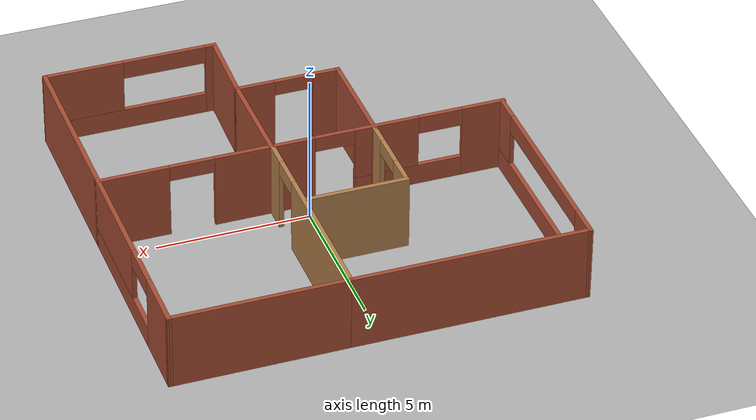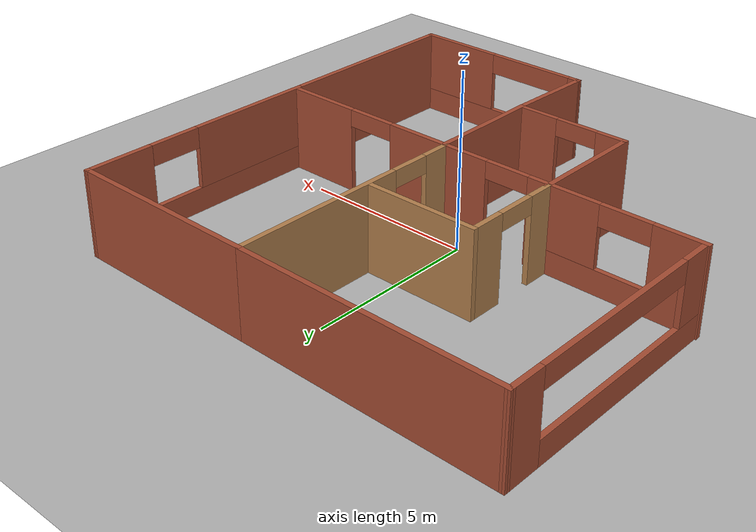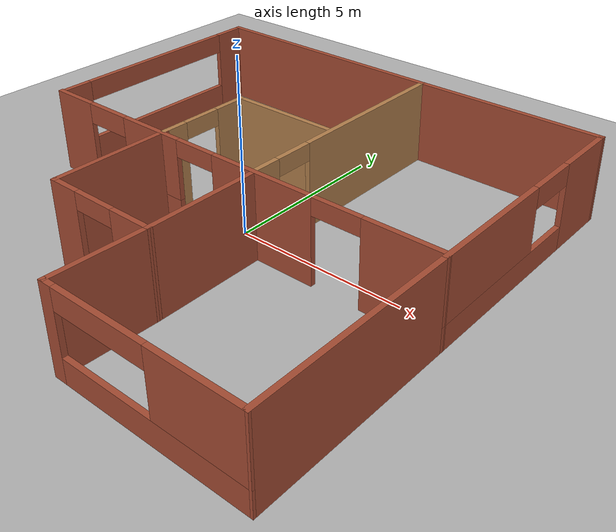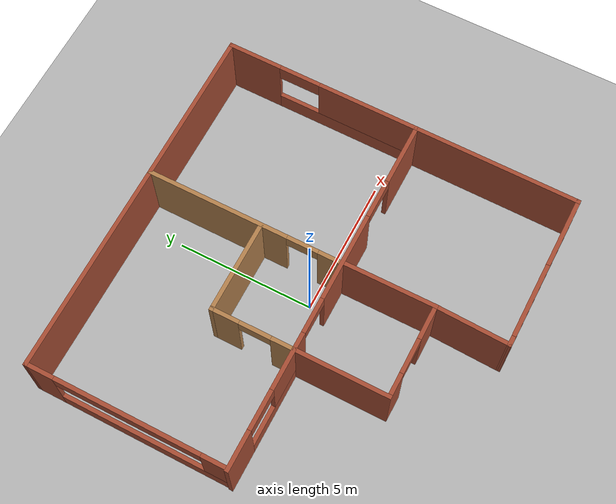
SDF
<sdf version="1.9">
 <world name="default">
  <gravity>0 0 -9.8</gravity>
  <magnetic_field>6e-06 2.3e-05 -4.2e-05</magnetic_field>
  <atmosphere type="adiabatic"/>
  <physics type="ode">
   <max_step_size>0.001</max_step_size>
   <real_time_factor>1</real_time_factor>
   <real_time_update_rate>1000</real_time_update_rate>
  </physics>
  <scene><ambient>0.4 0.4 0.4 1</ambient><background>0.7 0.7 0.7 1</background><shadows>true</shadows></scene>
  <model name="Robot_flats">
   <link name="Wall_0">
    <collision name="Wall_0_Collision">
     <geometry><box><size>7.72006 0.15 2.5</size></box></geometry>
     <pose>0 0 1.25 0 -0 0</pose>
    </collision>
    <visual name="Wall_0_Visual">
     <pose>0 0 1.25 0 -0 0</pose>
     <geometry><box><size>7.72006 0.15 2.5</size></box></geometry>
     <material>
      <script><uri>file://media/materials/scripts/gazebo.material</uri><name>Gazebo/Bricks</name></script>
      <ambient>0.647059 0.113725 0.176471 1</ambient>
     </material>
     <meta><layer>0</layer></meta>
    </visual>
    <pose>-2.78094 6.5402 0 0 0 -0.003963</pose>
    <inertial>
     <mass>1</mass>
     <inertia><ixx>1</ixx><ixy>0</ixy><ixz>0</ixz><iyy>1</iyy><iyz>0</iyz><izz>1</izz></inertia>
    </inertial>
   </link>
   <link name="Wall_1">
    <collision name="Wall_1_Collision">
     <geometry><box><size>5.75 0.15 2.5</size></box></geometry>
     <pose>0 0 1.25 0 -0 0</pose>
    </collision>
    <visual name="Wall_1_Visual">
     <pose>0 0 1.25 0 -0 0</pose>
     <geometry><box><size>5.75 0.15 2.5</size></box></geometry>
     <material>
      <script><uri>file://media/materials/scripts/gazebo.material</uri><name>Gazebo/Bricks</name></script>
      <ambient>0.647059 0.113725 0.176471 1</ambient>
     </material>
     <meta><layer>0</layer></meta>
    </visual>
    <pose>3.80406 6.5252 0 0 -0 0</pose>
    <inertial>
     <mass>1</mass>
     <inertia><ixx>1</ixx><ixy>0</ixy><ixz>0</ixz><iyy>1</iyy><iyz>0</iyz><izz>1</izz></inertia>
    </inertial>
   </link>
   <link name="Wall_10">
    <pose>-0.054273 -0.632094 0 0 -0 0</pose>
    <visual name="Wall_10_Visual_0">
     <pose>-5.8963 0 1.25 0 -0 0</pose>
     <geometry><box><size>1.4574 0.15 2.5</size></box></geometry>
     <material>
      <script><uri>file://media/materials/scripts/gazebo.material</uri><name>Gazebo/Bricks</name></script>
      <ambient>0.647059 0.113725 0.176471 1</ambient>
     </material>
     <meta><layer>0</layer></meta>
    </visual>
    <collision name="Wall_10_Collision_0">
     <geometry><box><size>1.4574 0.15 2.5</size></box></geometry>
     <pose>-5.8963 0 1.25 0 -0 0</pose>
    </collision>
    <visual name="Wall_10_Visual_1">
     <pose>1.31178 0 1.25 0 -0 0</pose>
     <geometry><box><size>3.26263 0.15 2.5</size></box></geometry>
     <material>
      <script><uri>file://media/materials/scripts/gazebo.material</uri><name>Gazebo/Bricks</name></script>
      <ambient>0.647059 0.113725 0.176471 1</ambient>
     </material>
     <meta><layer>0</layer></meta>
    </visual>
    <collision name="Wall_10_Collision_1">
     <geometry><box><size>3.26263 0.15 2.5</size></box></geometry>
     <pose>1.31178 0 1.25 0 -0 0</pose>
    </collision>
    <visual name="Wall_10_Visual_2">
     <pose>5.50515 0 1.25 0 -0 0</pose>
     <geometry><box><size>2.23971 0.15 2.5</size></box></geometry>
     <material>
      <script><uri>file://media/materials/scripts/gazebo.material</uri><name>Gazebo/Bricks</name></script>
      <ambient>0.647059 0.113725 0.176471 1</ambient>
     </material>
     <meta><layer>0</layer></meta>
    </visual>
    <collision name="Wall_10_Collision_2">
     <geometry><box><size>2.23971 0.15 2.5</size></box></geometry>
     <pose>5.50515 0 1.25 0 -0 0</pose>
    </collision>
    <visual name="Wall_10_Visual_3">
     <pose>-3.3947 0 0.35 0 -0 0</pose>
     <geometry><box><size>3.5458 0.15 0.7</size></box></geometry>
     <material>
      <script><uri>file://media/materials/scripts/gazebo.material</uri><name>Gazebo/Bricks</name></script>
      <ambient>0.647059 0.113725 0.176471 1</ambient>
     </material>
     <meta><layer>0</layer></meta>
    </visual>
    <collision name="Wall_10_Collision_3">
     <geometry><box><size>3.5458 0.15 0.7</size></box></geometry>
     <pose>-3.3947 0 0.35 0 -0 0</pose>
    </collision>
    <visual name="Wall_10_Visual_4">
     <pose>-2.6727 0 1.6 0 -0 0</pose>
     <geometry><box><size>2.1018 0.15 1.8</size></box></geometry>
     <material>
      <script><uri>file://media/materials/scripts/gazebo.material</uri><name>Gazebo/Bricks</name></script>
      <ambient>0.647059 0.113725 0.176471 1</ambient>
     </material>
     <meta><layer>0</layer></meta>
    </visual>
    <collision name="Wall_10_Collision_4">
     <geometry><box><size>2.1018 0.15 1.8</size></box></geometry>
     <pose>-2.6727 0 1.6 0 -0 0</pose>
    </collision>
    <visual name="Wall_10_Visual_5">
     <pose>-4.4456 0 2.2 0 -0 0</pose>
     <geometry><box><size>1.444 0.15 0.6</size></box></geometry>
     <material>
      <script><uri>file://media/materials/scripts/gazebo.material</uri><name>Gazebo/Bricks</name></script>
      <ambient>0.647059 0.113725 0.176471 1</ambient>
     </material>
     <meta><layer>0</layer></meta>
    </visual>
    <collision name="Wall_10_Collision_5">
     <geometry><box><size>1.444 0.15 0.6</size></box></geometry>
     <pose>-4.4456 0 2.2 0 -0 0</pose>
    </collision>
    <visual name="Wall_10_Visual_6">
     <pose>3.6642 0 2.25 0 -0 0</pose>
     <geometry><box><size>1.44219 0.15 0.5</size></box></geometry>
     <material>
      <script><uri>file://media/materials/scripts/gazebo.material</uri><name>Gazebo/Bricks</name></script>
      <ambient>0.647059 0.113725 0.176471 1</ambient>
     </material>
     <meta><layer>0</layer></meta>
    </visual>
    <collision name="Wall_10_Collision_6">
     <geometry><box><size>1.44219 0.15 0.5</size></box></geometry>
     <pose>3.6642 0 2.25 0 -0 0</pose>
    </collision>
    <visual name="Wall_10_Visual_7">
     <pose>-0.97067 0 2.25 0 -0 0</pose>
     <geometry><box><size>1.30227 0.15 0.5</size></box></geometry>
     <material>
      <script><uri>file://media/materials/scripts/gazebo.material</uri><name>Gazebo/Bricks</name></script>
      <ambient>0.647059 0.113725 0.176471 1</ambient>
     </material>
     <meta><layer>0</layer></meta>
    </visual>
    <collision name="Wall_10_Collision_7">
     <geometry><box><size>1.30227 0.15 0.5</size></box></geometry>
     <pose>-0.97067 0 2.25 0 -0 0</pose>
    </collision>
    <inertial>
     <mass>1</mass>
     <inertia><ixx>1</ixx><ixy>0</ixy><ixz>0</ixz><iyy>1</iyy><iyz>0</iyz><izz>1</izz></inertia>
    </inertial>
   </link>
   <link name="Wall_12">
    <pose>-6.56594 3.0052 0 0 0 -1.5708</pose>
    <visual name="Wall_12_Visual_0">
     <pose>-3.08282 0 1.25 0 -0 0</pose>
     <geometry><box><size>1.08436 0.15 2.5</size></box></geometry>
     <material>
      <script><uri>file://media/materials/scripts/gazebo.material</uri><name>Gazebo/Bricks</name></script>
      <ambient>0.647059 0.113725 0.176471 1</ambient>
     </material>
     <meta><layer>0</layer></meta>
    </visual>
    <collision name="Wall_12_Collision_0">
     <geometry><box><size>1.08436 0.15 2.5</size></box></geometry>
     <pose>-3.08282 0 1.25 0 -0 0</pose>
    </collision>
    <visual name="Wall_12_Visual_1">
     <pose>0.542182 0 0.35 0 -0 0</pose>
     <geometry><box><size>6.16564 0.15 0.7</size></box></geometry>
     <material>
      <script><uri>file://media/materials/scripts/gazebo.material</uri><name>Gazebo/Bricks</name></script>
      <ambient>0.647059 0.113725 0.176471 1</ambient>
     </material>
     <meta><layer>0</layer></meta>
    </visual>
    <collision name="Wall_12_Collision_1">
     <geometry><box><size>6.16564 0.15 0.7</size></box></geometry>
     <pose>0.542182 0 0.35 0 -0 0</pose>
    </collision>
    <visual name="Wall_12_Visual_2">
     <pose>3.16468 0 1.6 0 -0 0</pose>
     <geometry><box><size>0.920637 0.15 1.8</size></box></geometry>
     <material>
      <script><uri>file://media/materials/scripts/gazebo.material</uri><name>Gazebo/Bricks</name></script>
      <ambient>0.647059 0.113725 0.176471 1</ambient>
     </material>
     <meta><layer>0</layer></meta>
    </visual>
    <collision name="Wall_12_Collision_2">
     <geometry><box><size>0.920637 0.15 1.8</size></box></geometry>
     <pose>3.16468 0 1.6 0 -0 0</pose>
    </collision>
    <visual name="Wall_12_Visual_3">
     <pose>0.081863 0 2.2 0 -0 0</pose>
     <geometry><box><size>5.245 0.15 0.6</size></box></geometry>
     <material>
      <script><uri>file://media/materials/scripts/gazebo.material</uri><name>Gazebo/Bricks</name></script>
      <ambient>0.647059 0.113725 0.176471 1</ambient>
     </material>
     <meta><layer>0</layer></meta>
    </visual>
    <collision name="Wall_12_Collision_3">
     <geometry><box><size>5.245 0.15 0.6</size></box></geometry>
     <pose>0.081863 0 2.2 0 -0 0</pose>
    </collision>
    <inertial>
     <mass>1</mass>
     <inertia><ixx>1</ixx><ixy>0</ixy><ixz>0</ixz><iyy>1</iyy><iyz>0</iyz><izz>1</izz></inertia>
    </inertial>
   </link>
   <link name="Wall_14">
    <collision name="Wall_14_Collision">
     <geometry><box><size>3.57893 0.15 2.5</size></box></geometry>
     <pose>0 0 1.25 0 -0 0</pose>
    </collision>
    <visual name="Wall_14_Visual">
     <pose>0 0 1.25 0 -0 0</pose>
     <geometry><box><size>3.57893 0.15 2.5</size></box></geometry>
     <material>
      <script><uri>file://media/materials/scripts/gazebo.material</uri><name>Gazebo/Bricks</name></script>
      <ambient>0.647059 0.113725 0.176471 1</ambient>
     </material>
     <meta><layer>0</layer></meta>
    </visual>
    <pose>-2.30172 -2.24074 0 0 0 -1.5708</pose>
    <inertial>
     <mass>1</mass>
     <inertia><ixx>1</ixx><ixy>0</ixy><ixz>0</ixz><iyy>1</iyy><iyz>0</iyz><izz>1</izz></inertia>
    </inertial>
   </link>
   <link name="Wall_16">
    <pose>-0.626717 -3.95521 0 0 -0 0</pose>
    <visual name="Wall_16_Visual_0">
     <pose>-1.28599 0 1.25 0 -0 0</pose>
     <geometry><box><size>0.92801 0.15 2.5</size></box></geometry>
     <material>
      <script><uri>file://media/materials/scripts/gazebo.material</uri><name>Gazebo/Bricks</name></script>
      <ambient>0.647059 0.113725 0.176471 1</ambient>
     </material>
     <meta><layer>0</layer></meta>
    </visual>
    <collision name="Wall_16_Collision_0">
     <geometry><box><size>0.92801 0.15 2.5</size></box></geometry>
     <pose>-1.28599 0 1.25 0 -0 0</pose>
    </collision>
    <visual name="Wall_16_Visual_1">
     <pose>1.09765 0 1.25 0 -0 0</pose>
     <geometry><box><size>1.3047 0.15 2.5</size></box></geometry>
     <material>
      <script><uri>file://media/materials/scripts/gazebo.material</uri><name>Gazebo/Bricks</name></script>
      <ambient>0.647059 0.113725 0.176471 1</ambient>
     </material>
     <meta><layer>0</layer></meta>
    </visual>
    <collision name="Wall_16_Collision_1">
     <geometry><box><size>1.3047 0.15 2.5</size></box></geometry>
     <pose>1.09765 0 1.25 0 -0 0</pose>
    </collision>
    <visual name="Wall_16_Visual_2">
     <pose>-0.188345 0 2.25 0 -0 0</pose>
     <geometry><box><size>1.26729 0.15 0.5</size></box></geometry>
     <material>
      <script><uri>file://media/materials/scripts/gazebo.material</uri><name>Gazebo/Bricks</name></script>
      <ambient>0.647059 0.113725 0.176471 1</ambient>
     </material>
     <meta><layer>0</layer></meta>
    </visual>
    <collision name="Wall_16_Collision_2">
     <geometry><box><size>1.26729 0.15 0.5</size></box></geometry>
     <pose>-0.188345 0 2.25 0 -0 0</pose>
    </collision>
    <inertial>
     <mass>1</mass>
     <inertia><ixx>1</ixx><ixy>0</ixy><ixz>0</ixz><iyy>1</iyy><iyz>0</iyz><izz>1</izz></inertia>
    </inertial>
   </link>
   <link name="Wall_19">
    <collision name="Wall_19_Collision">
     <geometry><box><size>3.43824 0.15 2.5</size></box></geometry>
     <pose>0 0 1.25 0 -0 0</pose>
    </collision>
    <visual name="Wall_19_Visual">
     <pose>0 0 1.25 0 -0 0</pose>
     <geometry><box><size>3.43824 0.15 2.5</size></box></geometry>
     <material>
      <script><uri>file://media/materials/scripts/gazebo.material</uri><name>Gazebo/Bricks</name></script>
      <ambient>0.647059 0.113725 0.176471 1</ambient>
     </material>
     <meta><layer>0</layer></meta>
    </visual>
    <pose>1.04358 -2.31114 0 0 -0 1.57366</pose>
    <inertial>
     <mass>1</mass>
     <inertia><ixx>1</ixx><ixy>0</ixy><ixz>0</ixz><iyy>1</iyy><iyz>0</iyz><izz>1</izz></inertia>
    </inertial>
   </link>
   <link name="Wall_21">
    <collision name="Wall_21_Collision">
     <geometry><box><size>2.73399 0.15 2.5</size></box></geometry>
     <pose>0 0 1.25 0 -0 0</pose>
    </collision>
    <visual name="Wall_21_Visual">
     <pose>0 0 1.25 0 -0 0</pose>
     <geometry><box><size>2.73399 0.15 2.5</size></box></geometry>
     <material>
      <script><uri>file://media/materials/scripts/gazebo.material</uri><name>Gazebo/Bricks</name></script>
      <ambient>0.647059 0.113725 0.176471 1</ambient>
     </material>
     <meta><layer>0</layer></meta>
    </visual>
    <pose>1.00456 -5.24646 0 0 0 -1.60465</pose>
    <inertial>
     <mass>1</mass>
     <inertia><ixx>1</ixx><ixy>0</ixy><ixz>0</ixz><iyy>1</iyy><iyz>0</iyz><izz>1</izz></inertia>
    </inertial>
   </link>
   <link name="Wall_22">
    <pose>3.76083 -6.55521 0 0 -0 0</pose>
    <visual name="Wall_22_Visual_0">
     <pose>-2.68042 0 1.25 0 -0 0</pose>
     <geometry><box><size>0.389161 0.15 2.5</size></box></geometry>
     <material>
      <script><uri>file://media/materials/scripts/gazebo.material</uri><name>Gazebo/Bricks</name></script>
      <ambient>0.647059 0.113725 0.176471 1</ambient>
     </material>
     <meta><layer>0</layer></meta>
    </visual>
    <collision name="Wall_22_Collision_0">
     <geometry><box><size>0.389161 0.15 2.5</size></box></geometry>
     <pose>-2.68042 0 1.25 0 -0 0</pose>
    </collision>
    <visual name="Wall_22_Visual_1">
     <pose>0.194581 0 0.35 0 -0 0</pose>
     <geometry><box><size>5.36084 0.15 0.7</size></box></geometry>
     <material>
      <script><uri>file://media/materials/scripts/gazebo.material</uri><name>Gazebo/Bricks</name></script>
      <ambient>0.647059 0.113725 0.176471 1</ambient>
     </material>
     <meta><layer>0</layer></meta>
    </visual>
    <collision name="Wall_22_Collision_1">
     <geometry><box><size>5.36084 0.15 0.7</size></box></geometry>
     <pose>0.194581 0 0.35 0 -0 0</pose>
    </collision>
    <visual name="Wall_22_Visual_2">
     <pose>1.56003 0 1.6 0 -0 0</pose>
     <geometry><box><size>2.62994 0.15 1.8</size></box></geometry>
     <material>
      <script><uri>file://media/materials/scripts/gazebo.material</uri><name>Gazebo/Bricks</name></script>
      <ambient>0.647059 0.113725 0.176471 1</ambient>
     </material>
     <meta><layer>0</layer></meta>
    </visual>
    <collision name="Wall_22_Collision_2">
     <geometry><box><size>2.62994 0.15 1.8</size></box></geometry>
     <pose>1.56003 0 1.6 0 -0 0</pose>
    </collision>
    <visual name="Wall_22_Visual_3">
     <pose>-1.12039 0 2.2 0 -0 0</pose>
     <geometry><box><size>2.7309 0.15 0.6</size></box></geometry>
     <material>
      <script><uri>file://media/materials/scripts/gazebo.material</uri><name>Gazebo/Bricks</name></script>
      <ambient>0.647059 0.113725 0.176471 1</ambient>
     </material>
     <meta><layer>0</layer></meta>
    </visual>
    <collision name="Wall_22_Collision_3">
     <geometry><box><size>2.7309 0.15 0.6</size></box></geometry>
     <pose>-1.12039 0 2.2 0 -0 0</pose>
    </collision>
    <inertial>
     <mass>1</mass>
     <inertia><ixx>1</ixx><ixy>0</ixy><ixz>0</ixz><iyy>1</iyy><iyz>0</iyz><izz>1</izz></inertia>
    </inertial>
   </link>
   <link name="Wall_24">
    <collision name="Wall_24_Collision">
     <geometry><box><size>5.96821 0.15 2.5</size></box></geometry>
     <pose>0 0 1.25 0 -0 0</pose>
    </collision>
    <visual name="Wall_24_Visual">
     <pose>0 0 1.25 0 -0 0</pose>
     <geometry><box><size>5.96821 0.15 2.5</size></box></geometry>
     <material>
      <script><uri>file://media/materials/scripts/gazebo.material</uri><name>Gazebo/Bricks</name></script>
      <ambient>0.647059 0.113725 0.176471 1</ambient>
     </material>
     <meta><layer>0</layer></meta>
    </visual>
    <pose>6.57203 -3.64612 0 0 -0 1.56695</pose>
    <inertial>
     <mass>1</mass>
     <inertia><ixx>1</ixx><ixy>0</ixy><ixz>0</ixz><iyy>1</iyy><iyz>0</iyz><izz>1</izz></inertia>
    </inertial>
   </link>
   <link name="Wall_3">
    <pose>1.00406 2.9752 0 0 0 -1.5708</pose>
    <visual name="Wall_3_Visual_0">
     <pose>-1.00779 0 1.25 0 -0 0</pose>
     <geometry><box><size>5.23442 0.15 2.5</size></box></geometry>
     <material>
      <script><uri>file://media/materials/scripts/gazebo.material</uri><name>Gazebo/Wood</name></script>
      <ambient>0.388235 0.270588 0.172549 1</ambient>
     </material>
     <meta><layer>0</layer></meta>
    </visual>
    <collision name="Wall_3_Collision_0">
     <geometry><box><size>5.23442 0.15 2.5</size></box></geometry>
     <pose>-1.00779 0 1.25 0 -0 0</pose>
    </collision>
    <visual name="Wall_3_Visual_1">
     <pose>3.18964 0 1.25 0 -0 0</pose>
     <geometry><box><size>0.870718 0.15 2.5</size></box></geometry>
     <material>
      <script><uri>file://media/materials/scripts/gazebo.material</uri><name>Gazebo/Wood</name></script>
      <ambient>0.388235 0.270588 0.172549 1</ambient>
     </material>
     <meta><layer>0</layer></meta>
    </visual>
    <collision name="Wall_3_Collision_1">
     <geometry><box><size>0.870718 0.15 2.5</size></box></geometry>
     <pose>3.18964 0 1.25 0 -0 0</pose>
    </collision>
    <visual name="Wall_3_Visual_2">
     <pose>2.18185 0 2.25 0 -0 0</pose>
     <geometry><box><size>1.14486 0.15 0.5</size></box></geometry>
     <material>
      <script><uri>file://media/materials/scripts/gazebo.material</uri><name>Gazebo/Wood</name></script>
      <ambient>0.388235 0.270588 0.172549 1</ambient>
     </material>
     <meta><layer>0</layer></meta>
    </visual>
    <collision name="Wall_3_Collision_2">
     <geometry><box><size>1.14486 0.15 0.5</size></box></geometry>
     <pose>2.18185 0 2.25 0 -0 0</pose>
    </collision>
    <inertial>
     <mass>1</mass>
     <inertia><ixx>1</ixx><ixy>0</ixy><ixz>0</ixz><iyy>1</iyy><iyz>0</iyz><izz>1</izz></inertia>
    </inertial>
   </link>
   <link name="Wall_5">
    <collision name="Wall_5_Collision">
     <geometry><box><size>3.38642 0.15 2.5</size></box></geometry>
     <pose>0 0 1.25 0 -0 0</pose>
    </collision>
    <visual name="Wall_5_Visual">
     <pose>0 0 1.25 0 -0 0</pose>
     <geometry><box><size>3.38642 0.15 2.5</size></box></geometry>
     <material>
      <script><uri>file://media/materials/scripts/gazebo.material</uri><name>Gazebo/Wood</name></script>
      <ambient>0.388235 0.270588 0.172549 1</ambient>
     </material>
     <meta><layer>0</layer></meta>
    </visual>
    <pose>-0.683887 2.32373 0 0 -0 3.14159</pose>
    <inertial>
     <mass>1</mass>
     <inertia><ixx>1</ixx><ixy>0</ixy><ixz>0</ixz><iyy>1</iyy><iyz>0</iyz><izz>1</izz></inertia>
    </inertial>
   </link>
   <link name="Wall_6">
    <pose>-2.30172 0.898727 0 0 0 -1.5708</pose>
    <visual name="Wall_6_Visual_0">
     <pose>-0.966035 0 1.25 0 -0 0</pose>
     <geometry><box><size>1.06793 0.15 2.5</size></box></geometry>
     <material>
      <script><uri>file://media/materials/scripts/gazebo.material</uri><name>Gazebo/Wood</name></script>
      <ambient>0.388235 0.270588 0.172549 1</ambient>
     </material>
     <meta><layer>0</layer></meta>
    </visual>
    <collision name="Wall_6_Collision_0">
     <geometry><box><size>1.06793 0.15 2.5</size></box></geometry>
     <pose>-0.966035 0 1.25 0 -0 0</pose>
    </collision>
    <visual name="Wall_6_Visual_1">
     <pose>1.1064 0 1.25 0 -0 0</pose>
     <geometry><box><size>0.787209 0.15 2.5</size></box></geometry>
     <material>
      <script><uri>file://media/materials/scripts/gazebo.material</uri><name>Gazebo/Wood</name></script>
      <ambient>0.388235 0.270588 0.172549 1</ambient>
     </material>
     <meta><layer>0</layer></meta>
    </visual>
    <collision name="Wall_6_Collision_1">
     <geometry><box><size>0.787209 0.15 2.5</size></box></geometry>
     <pose>1.1064 0 1.25 0 -0 0</pose>
    </collision>
    <visual name="Wall_6_Visual_2">
     <pose>0.140361 0 2.25 0 -0 0</pose>
     <geometry><box><size>1.14486 0.15 0.5</size></box></geometry>
     <material>
      <script><uri>file://media/materials/scripts/gazebo.material</uri><name>Gazebo/Wood</name></script>
      <ambient>0.388235 0.270588 0.172549 1</ambient>
     </material>
     <meta><layer>0</layer></meta>
    </visual>
    <collision name="Wall_6_Collision_2">
     <geometry><box><size>1.14486 0.15 0.5</size></box></geometry>
     <pose>0.140361 0 2.25 0 -0 0</pose>
    </collision>
    <inertial>
     <mass>1</mass>
     <inertia><ixx>1</ixx><ixy>0</ixy><ixz>0</ixz><iyy>1</iyy><iyz>0</iyz><izz>1</izz></inertia>
    </inertial>
   </link>
   <link name="Wall_8">
    <pose>6.59365 2.89408 0 0 0 -1.57366</pose>
    <visual name="Wall_8_Visual_0">
     <pose>-2.69638 0 1.25 0 -0 0</pose>
     <geometry><box><size>2.01958 0.15 2.5</size></box></geometry>
     <material>
      <script><uri>file://media/materials/scripts/gazebo.material</uri><name>Gazebo/Bricks</name></script>
      <ambient>0.647059 0.113725 0.176471 1</ambient>
     </material>
     <meta><layer>0</layer></meta>
    </visual>
    <collision name="Wall_8_Collision_0">
     <geometry><box><size>2.01958 0.15 2.5</size></box></geometry>
     <pose>-2.69638 0 1.25 0 -0 0</pose>
    </collision>
    <visual name="Wall_8_Visual_1">
     <pose>1.00979 0 0.35 0 -0 0</pose>
     <geometry><box><size>5.39276 0.15 0.7</size></box></geometry>
     <material>
      <script><uri>file://media/materials/scripts/gazebo.material</uri><name>Gazebo/Bricks</name></script>
      <ambient>0.647059 0.113725 0.176471 1</ambient>
     </material>
     <meta><layer>0</layer></meta>
    </visual>
    <collision name="Wall_8_Collision_1">
     <geometry><box><size>5.39276 0.15 0.7</size></box></geometry>
     <pose>1.00979 0 0.35 0 -0 0</pose>
    </collision>
    <visual name="Wall_8_Visual_2">
     <pose>1.77179 0 1.6 0 -0 0</pose>
     <geometry><box><size>3.86876 0.15 1.8</size></box></geometry>
     <material>
      <script><uri>file://media/materials/scripts/gazebo.material</uri><name>Gazebo/Bricks</name></script>
      <ambient>0.647059 0.113725 0.176471 1</ambient>
     </material>
     <meta><layer>0</layer></meta>
    </visual>
    <collision name="Wall_8_Collision_2">
     <geometry><box><size>3.86876 0.15 1.8</size></box></geometry>
     <pose>1.77179 0 1.6 0 -0 0</pose>
    </collision>
    <visual name="Wall_8_Visual_3">
     <pose>-0.924589 0 2.2 0 -0 0</pose>
     <geometry><box><size>1.524 0.15 0.6</size></box></geometry>
     <material>
      <script><uri>file://media/materials/scripts/gazebo.material</uri><name>Gazebo/Bricks</name></script>
      <ambient>0.647059 0.113725 0.176471 1</ambient>
     </material>
     <meta><layer>0</layer></meta>
    </visual>
    <collision name="Wall_8_Collision_3">
     <geometry><box><size>1.524 0.15 0.6</size></box></geometry>
     <pose>-0.924589 0 2.2 0 -0 0</pose>
    </collision>
    <inertial>
     <mass>1</mass>
     <inertia><ixx>1</ixx><ixy>0</ixy><ixz>0</ixz><iyy>1</iyy><iyz>0</iyz><izz>1</izz></inertia>
    </inertial>
   </link>
   <static>true</static>
  </model>
  <model name="ground_plane">
   <static>true</static>
   <link name="link">
    <collision name="collision">
     <geometry><plane><normal>0 0 1</normal><size>100 100</size></plane></geometry>
     <surface><friction><ode><mu>100</mu><mu2>50</mu2></ode></friction></surface>
    </collision>
    <visual name="visual">
     <cast_shadows>false</cast_shadows>
     <geometry><plane><normal>0 0 1</normal><size>100 100</size></plane></geometry>
     <material>
      <ambient>0.3 0.3 0.3 1</ambient>
      <diffuse>0.7 0.7 0.7 1</diffuse>
      <specular>0.01 0.01 0.01 1</specular>
     </material>
    </visual>
    <inertial>
     <mass>1</mass>
     <inertia><ixx>1</ixx><ixy>0</ixy><ixz>0</ixz><iyy>1</iyy><iyz>0</iyz><izz>1</izz></inertia>
    </inertial>
   </link>
  </model>
  <light name="sun" type="directional">
   <pose>38.7761 4.74884 10 0 -0 0</pose>
   <intensity>1</intensity>
   <direction>-0.5 0.1 -0.9</direction>
   <diffuse>0.8 0.8 0.8 1</diffuse>
   <specular>0.2 0.2 0.2 1</specular>
   <attenuation>
    <range>1000</range>
    <linear>0.01</linear>
    <constant>0.90000000000000002</constant>
    <quadratic>0.001</quadratic>
   </attenuation>
   <spot><inner_angle>0</inner_angle><outer_angle>0</outer_angle><falloff>0</falloff></spot>
  </light>
 </world>
</sdf>
